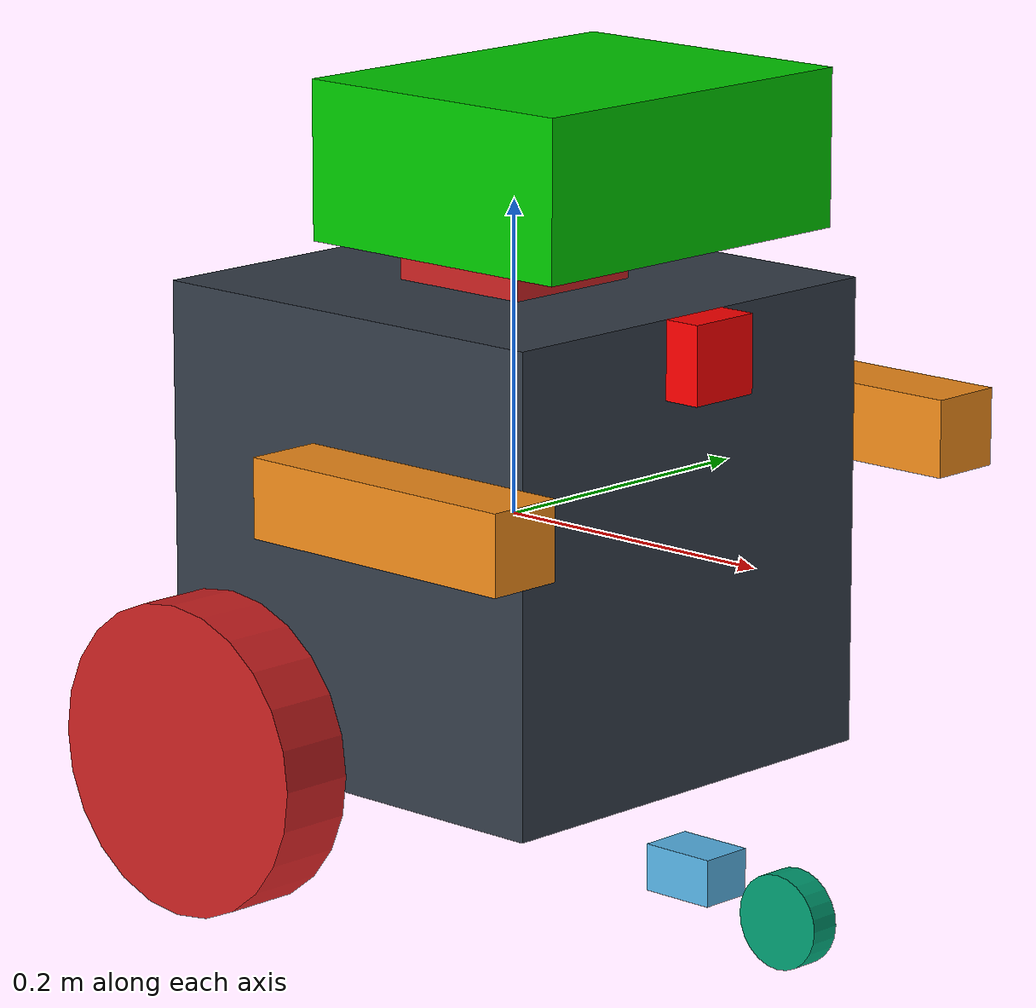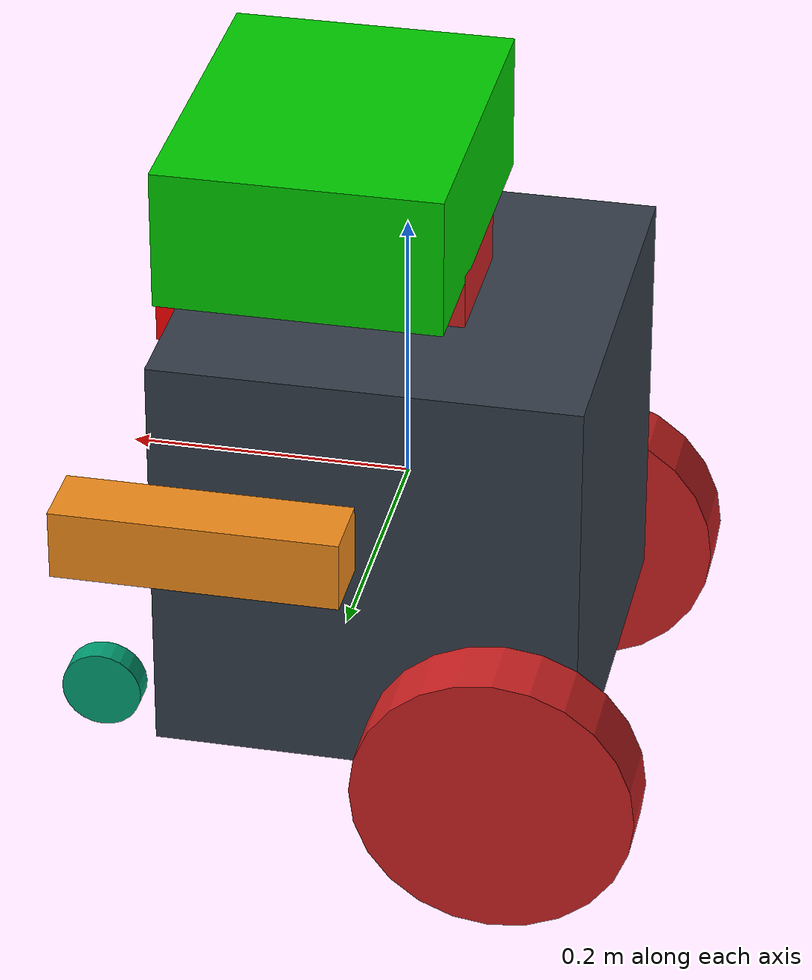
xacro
<?xml version="1.0"?>
<robot xmlns:xacro="http://www.ros.org/wiki/xacro" name="robot_xacro">
<xacro:include filename="$(find exp_assignment3)/urdf/Pet/robot.gazebo"/>

	<xacro:property name="length_wheel" value="0.05" />
	<xacro:property name="radius_wheel" value="0.10" />

	<xacro:macro name="default_inertial" params="mass">
               <inertial>
                       <mass value="${mass}" />
                       <origin rpy="0 1.5707 1.5707" xyz="0 0 0"/>
                       <inertia ixx="0.000526666666667" ixy="0" ixz="0" iyy="0.000526666666667" iyz="0" izz="0.001"/>
               </inertial>
	</xacro:macro>

    <xacro:macro name="wheel_geometry">
		<geometry>
       			<cylinder length="${length_wheel}" radius="${radius_wheel}"/>
     	</geometry>
	</xacro:macro>

  <material name="black">
    <color rgba="0.0 0.0 0.0 1.0"/>
  </material>
  <material name="blue">
    <color rgba="0.203125 0.23828125 0.28515625 1.0"/>
  </material>
  <material name="green">
    <color rgba="0.0 0.8 0.0 1.0"/>
  </material>
  <material name="grey">
    <color rgba="0.2 0.2 0.2 1.0"/>
  </material>
  <material name="orange">
    <color rgba="1.0 0.423529411765 0.0392156862745 1.0"/>
  </material>
  <material name="brown">
    <color rgba="0.870588235294 0.811764705882 0.764705882353 1.0"/>
  </material>
  <material name="red">
    <color rgba="0.80078125 0.12890625 0.1328125 1.0"/>
  </material>
  <material name="white">
    <color rgba="1.0 1.0 1.0 1.0"/>
  </material>

    <link name="link_chassis">
    <!-- pose and inertial -->
    <pose>0 0 0.1 0 0 0</pose>
    <inertial>
      <mass value="10"/>
      <origin rpy="0 0 0" xyz="0 0 0.1"/>
      <inertia ixx="0.0395416666667" ixy="0" ixz="0" iyy="0.106208333333" iyz="0" izz="0.106208333333"/>
    </inertial>
    <!-- body -->
    <collision name="collision_chassis">
      <geometry>
        <box size="0.4 0.4 0.4"/>
      </geometry>
    </collision>
    <visual>
      <origin rpy="0 0 0" xyz="0 0 0"/>
      <geometry>
        <box size="0.3 0.3 0.3"/>
      </geometry>
      <material name="blue"/>
    </visual>
   <!-- arm left -->
    <collision name="arm_left_collision">
      <origin rpy=" 0 0 0" xyz="0.1 -0.20 0.05"/>
      <geometry>
        <box size="0.2 0.05 0.05"/>
      </geometry>
    </collision>
    <visual name="arm_left_visual">
      <origin rpy=" 0 0 0" xyz="0.1 -0.20 0.05"/>
      <geometry>
        <box size="0.2 0.05 0.05"/>
      </geometry>
    </visual>
   <!-- arm right -->
    <collision name="arm_right_collision">
      <origin rpy=" 0 0 0" xyz="0.1 0.20 0.05"/>
      <geometry>
        <box size="0.2 0.05 0.05"/>
      </geometry>
    </collision>
    <visual name="arm_right_visual">
      <origin rpy=" 0 0 0" xyz="0.1 0.20 0.05"/>
      <geometry>
        <box size="0.2 0.05 0.05"/>
      </geometry>
    </visual>
  </link>

<!-- castor wheels -->

 <link name="link_castor_axis">
    <!-- pose and inertial -->
    <pose>0 0 0.1 0 0 0</pose>
    <xacro:default_inertial mass="2" />
    <!-- body -->
    <collision name="collision_chassis">
      <origin rpy="0 0 0" xyz="0.025 0 0"/>
      <geometry>
        <box size="0.05 0.035 0.03"/>
      </geometry>
    </collision>
    <visual>
      <origin rpy="0 0 0" xyz="-0.025 0 0"/>
      <geometry>
        <box size="0.05 0.035 0.03"/>
      </geometry>
    </visual>
  </link>

  <link name="link_castor_wheel">
    <xacro:default_inertial mass="0.8"/>
    <collision name="link_castor_wheel_collision">
      <origin rpy="0 1.5707 1.5707" xyz="0 0 0"/>
      <geometry>
        <cylinder length="0.02" radius="0.03"/>
      </geometry>
    </collision>
    <visual name="link_castor_wheel_visual">
      <origin rpy="0 1.5707 1.5707" xyz="0 0 0"/>
      <geometry>
        <cylinder length="0.02" radius="0.03"/>
      </geometry>
    </visual>
  </link>

  <joint name="joint_castor_wheel" type="continuous">
    <origin rpy="0 0 0" xyz="0.05 0 -0.015"/>
    <child link="link_castor_wheel"/>
    <parent link="link_castor_axis"/>
    <axis rpy="0 0 0" xyz="0 1 0"/>
    <limit effort="10000" velocity="1000"/>
    <joint_properties damping="1.0" friction="1.0"/>
  </joint>

  <joint name="joint_castor_axis" type="continuous">
    <origin rpy="0 0 0" xyz="0.18 0 -0.20"/>
    <child link="link_castor_axis"/>
    <parent link="link_chassis"/>
    <axis rpy="0 0 0" xyz="0 0 1"/>
    <limit effort="10000" velocity="1000"/>
    <joint_properties damping="1.0" friction="1.0"/>
  </joint>

 <!-- Main wheels -->
  <joint name="joint_right_wheel" type="continuous">
    <origin rpy="0 0 0" xyz="-0.1 0.175 -0.14"/>
    <child link="link_right_wheel"/>
    <parent link="link_chassis"/>
    <axis rpy="0 0 0" xyz="0 1 0"/>
    <limit effort="10000" velocity="1000"/>
    <joint_properties damping="1.0" friction="1.0"/>
  </joint>

  <joint name="joint_left_wheel" type="continuous">
    <origin rpy="0 0 0" xyz="-0.1 -0.175 -0.14"/>
    <child link="link_left_wheel"/>
    <parent link="link_chassis"/>
    <axis rpy="0 0 0" xyz="0 1 0"/>
    <limit effort="10000" velocity="1000"/>
    <joint_properties damping="1.0" friction="1.0"/>
  </joint>

  <link name="link_right_wheel">
    <xacro:default_inertial mass="0.2"/>
    <collision name="link_right_wheel_collision">
      <origin rpy="0 1.5707 1.5707" xyz="0 0 0"/>
      <xacro:wheel_geometry />
    </collision>
    <visual name="link_right_wheel_visual">
      <origin rpy="0 1.5707 1.5707" xyz="0 0 0"/>
      <xacro:wheel_geometry />
      <material name="red"/>
    </visual>
  </link>

   <link name="link_left_wheel">
    <xacro:default_inertial mass="0.2"/>
    <collision name="link_left_wheel_collision">
      <origin rpy="0 1.5707 1.5707" xyz="0 0 0"/>
      <xacro:wheel_geometry />
    </collision>
    <visual name="link_left_wheel_visual">
      <origin rpy="0 1.5707 1.5707" xyz="0 0 0"/>
      <xacro:wheel_geometry />
      <material name="red"/>
    </visual>
  </link>

<!-- Neck and head -->

  <link name="neck_link">
	    <collision>
	      <origin xyz="0 0 0.10" rpy="0 0 0"/>
	      <geometry>
		<box size="0.10 0.10 0.20"/>
	      </geometry>
	    </collision>
	    <visual>
	      <origin xyz="0 0 0.10" rpy="0 0 0"/>
	      <geometry>
		<box size="0.10 0.10 0.20"/>
	      </geometry>
	      <material name="red"/>
	    </visual>
	    <inertial>
	      <mass value="2" />
	      <origin xyz="0 0 0" rpy="0 0 0"/>
	      <inertia ixx="1e-4" ixy="0" ixz="0" iyy="1e-4" iyz="0" izz="1e-5" />
	    </inertial>
  </link>

  <joint name="neck_joint" type="fixed">
	    <axis xyz="0 0 1" />
	    <origin xyz="0 0 0.0" rpy="0 0 0"/>
	    <parent link="link_chassis"/>
	    <child link="neck_link"/>
	 </joint>

  <link name="camera_link">
	    <collision>
	      <origin xyz="-0.2 0 0.05" rpy="0 0 0"/>
	      <geometry>
		<box size="0.10 0.20 0.1"/>
	      </geometry>
	    </collision>
	    <visual>
	      <origin xyz="-0.2 0 0.05" rpy="0 0 0"/>
	      <geometry>
		<box size="0.20 0.25 0.1"/>
	      </geometry>
	      <material name="green"/>
	    </visual>
	    <inertial>
	      <mass value="1e-5" />
	      <origin xyz="0 0 0" rpy="0 0 0"/>
	      <inertia ixx="1e-6" ixy="0" ixz="0" iyy="1" iyz="0" izz="1e-6" />
	    </inertial>
  </link>

  <joint name="camera_joint" type="fixed">
	    <axis xyz="1 0 0" />
	    <origin xyz="0.25 0 0.185" rpy="0 0 0"/>
	    <parent link="neck_link"/>
	    <child link="camera_link"/>
   </joint>

   <!-- Hokuyo sensor -->

   <link name="hokuyo_link">
	    <collision>
	      <origin xyz="0 0 0.025" rpy="0 0 0"/>
	      <geometry>
		<box size="0.05 0.05 0.05"/>
	      </geometry>
	    </collision>
	    <visual>
	      <origin xyz="0 0 0.025" rpy="0 0 0"/>
	      <geometry>
		<box size="0.05 0.05 0.05"/>
	      </geometry>
	      <material name="red">
		<color rgba="1 0 0 1"/>
	      </material>
	    </visual>
	    <inertial>
	      <mass value="1e-5" />
	      <origin xyz="0 0 0" rpy="0 0 0"/>
	      <inertia ixx="1e-6" ixy="0" ixz="0" iyy="1e-6" iyz="0" izz="1e-6" />
	    </inertial>
  </link>

  <joint name="hokuyo_joint" type="fixed">
	    <axis xyz="0 1 0" />
	    <origin xyz="0.15 0 0.10" rpy="0 0 0"/>
	    <parent link="link_chassis"/>
	    <child link="hokuyo_link"/>
  </joint>

</robot>
